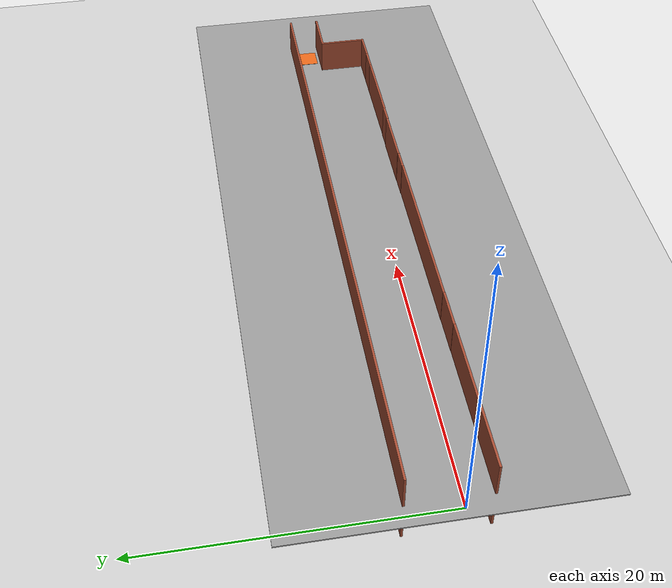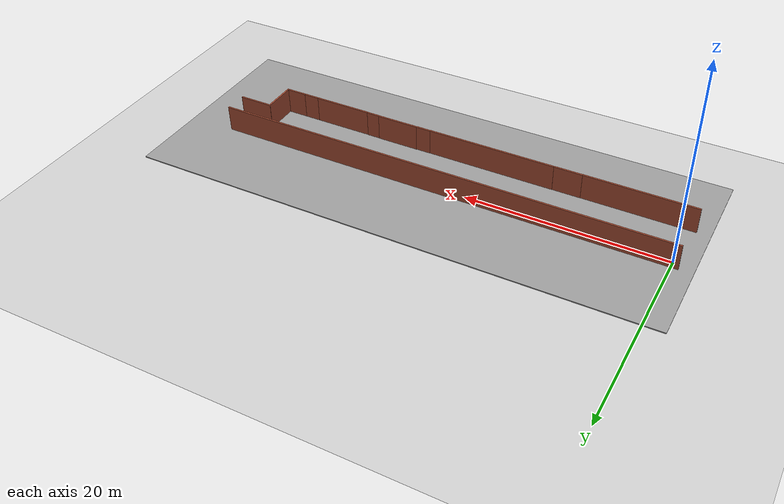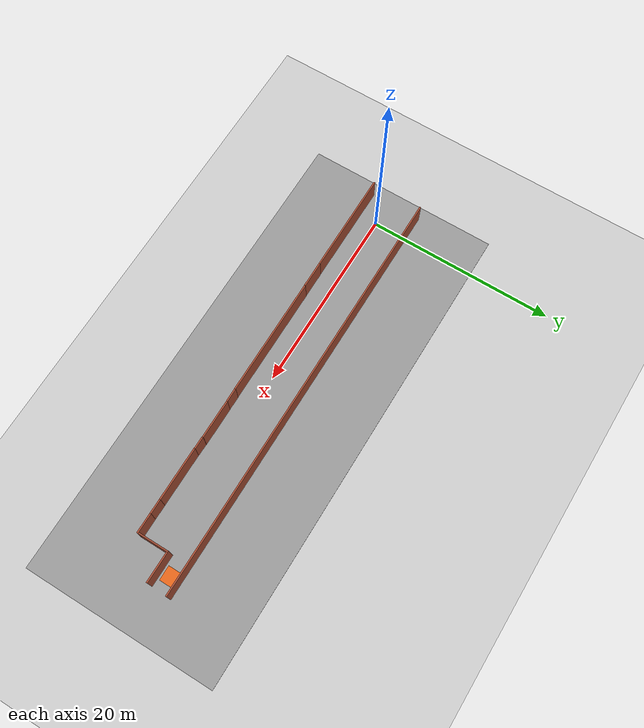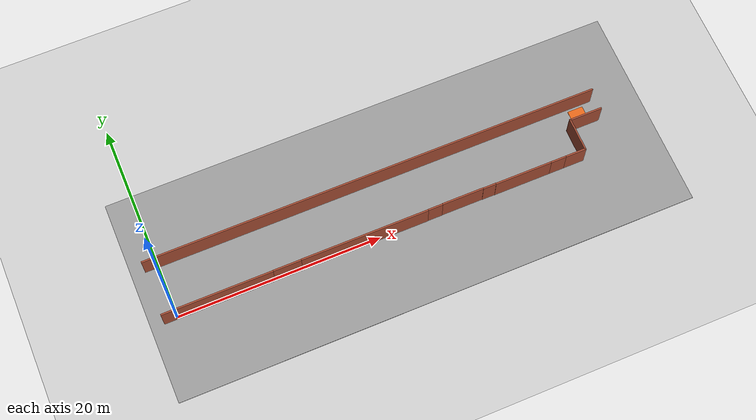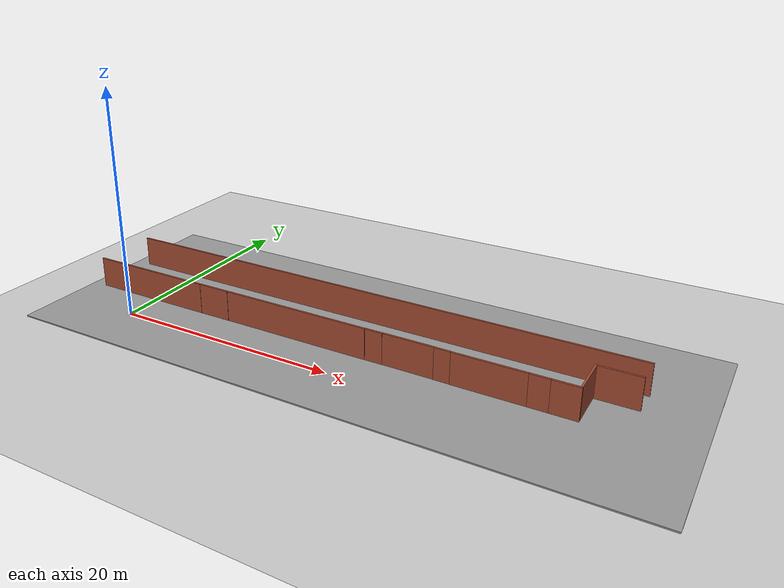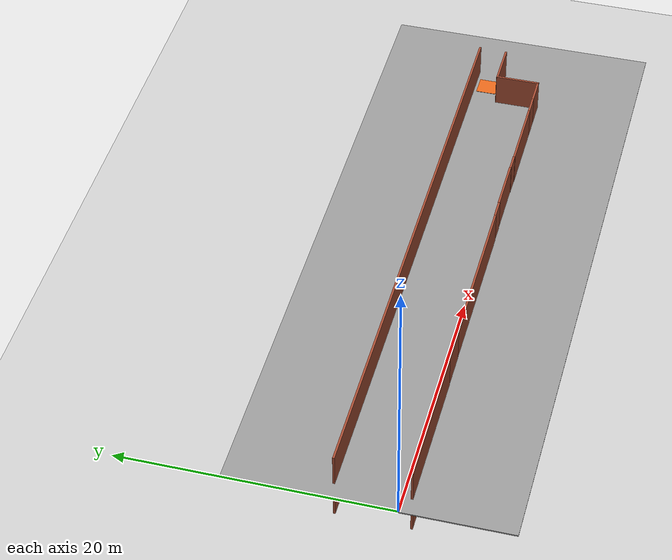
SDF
<sdf version='1.7'>
  <world name='default'>
    <light name='sun' type='directional'>
      <cast_shadows>1</cast_shadows>
      <pose>0 0 10 0 -0 0</pose>
      <diffuse>0.8 0.8 0.8 1</diffuse>
      <specular>0.2 0.2 0.2 1</specular>
      <attenuation>
        <range>1000</range>
        <constant>0.9</constant>
        <linear>0.01</linear>
        <quadratic>0.001</quadratic>
      </attenuation>
      <direction>-0.5 0.1 -0.9</direction>
      <spot>
        <inner_angle>0</inner_angle>
        <outer_angle>0</outer_angle>
        <falloff>0</falloff>
      </spot>
    </light>
    <model name='ground_plane'>
      <static>1</static>
      <link name='link'>
        <collision name='collision'>
          <geometry>
            <plane>
              <normal>0 0 1</normal>
              <size>100 100</size>
            </plane>
          </geometry>
          <surface>
            <friction>
              <ode>
                <mu>100</mu>
                <mu2>50</mu2>
              </ode>
              <torsional>
                <ode/>
              </torsional>
            </friction>
            <contact>
              <ode/>
            </contact>
            <bounce/>
          </surface>
          <max_contacts>10</max_contacts>
        </collision>
        <visual name='visual'>
          <cast_shadows>0</cast_shadows>
          <geometry>
            <plane>
              <normal>0 0 1</normal>
              <size>100 100</size>
            </plane>
          </geometry>
          <material>
            <script>
              <uri>file://media/materials/scripts/gazebo.material</uri>
              <name>Gazebo/Grey</name>
            </script>
          </material>
        </visual>
        <self_collide>0</self_collide>
        <enable_wind>0</enable_wind>
        <kinematic>0</kinematic>
      </link>
    </model>
    <gravity>0 0 -9.8</gravity>
    <magnetic_field>6e-06 2.3e-05 -4.2e-05</magnetic_field>
    <atmosphere type='adiabatic'/>
    <physics type='ode'>
      <max_step_size>0.001</max_step_size>
      <real_time_factor>1</real_time_factor>
      <real_time_update_rate>1000</real_time_update_rate>
    </physics>
    <scene>
      <ambient>0.4 0.4 0.4 1</ambient>
      <background>0.7 0.7 0.7 1</background>
      <shadows>1</shadows>
    </scene>
    <audio>
      <device>default</device>
    </audio>
    <wind/>
    <spherical_coordinates>
      <surface_model>EARTH_WGS84</surface_model>
      <latitude_deg>0</latitude_deg>
      <longitude_deg>0</longitude_deg>
      <elevation>0</elevation>
      <heading_deg>0</heading_deg>
    </spherical_coordinates>

    <include>
      <name>primer_piso_n1</name>
      <uri>model://primer_piso</uri>
      <pose>20.9036 1.43563 0 0 0 0</pose>
    </include>

    <!-- Losa del nivel 2: ground_plane solo existe en z=0, asi que el segundo
         nivel necesita su propio suelo. Cara superior en z=3.0. -->
    <model name='losa_nivel_2'>
      <static>1</static>
      <pose>22.5 1.5 2.95 0 0 0</pose>
      <link name='link'>
        <collision name='collision'>
          <geometry>
            <box>
              <size>50 20 0.1</size>
            </box>
          </geometry>
          <surface>
            <friction>
              <ode>
                <mu>100</mu>
                <mu2>50</mu2>
              </ode>
            </friction>
          </surface>
        </collision>
        <visual name='visual'>
          <geometry>
            <box>
              <size>50 20 0.1</size>
            </box>
          </geometry>
          <material>
            <script>
              <uri>file://media/materials/scripts/gazebo.material</uri>
              <name>Gazebo/Grey</name>
            </script>
          </material>
        </visual>
      </link>
    </model>

    <!-- Nivel 2: misma planta, 3 m mas arriba. Misma pose en X-Y que el nivel 1
         para que las coordenadas del mapa sirvan en los dos niveles. -->
    <include>
      <name>primer_piso_n2</name>
      <uri>model://primer_piso</uri>
      <pose>20.9036 1.43563 3.0 0 0 0</pose>
    </include>

    <gui fullscreen='0'>
      <camera name='user_camera'>
        <pose>20.9 -18.0 14.0 0 0.5 1.5708</pose>
        <view_controller>orbit</view_controller>
        <projection_type>perspective</projection_type>
      </camera>
    </gui>
  </world>
</sdf>

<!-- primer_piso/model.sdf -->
<sdf version='1.7'>
  <model name='primer_piso'>
    <pose>0 0 0 0 0 0</pose>
    <link name='Wall_11'>
      <collision name='Wall_11_Collision'>
        <geometry>
          <box>
            <size>5.5 0.15 2.5</size>
          </box>
        </geometry>
        <pose>0 0 1.25 0 -0 0</pose>
        <max_contacts>10</max_contacts>
        <surface>
          <contact>
            <ode/>
          </contact>
          <bounce/>
          <friction>
            <torsional>
              <ode/>
            </torsional>
            <ode/>
          </friction>
        </surface>
      </collision>
      <visual name='Wall_11_Visual'>
        <pose>0 0 1.25 0 -0 0</pose>
        <geometry>
          <box>
            <size>5.5 0.15 2.5</size>
          </box>
        </geometry>
        <material>
          <script>
            <uri>file://media/materials/scripts/gazebo.material</uri>
            <name>Gazebo/Bricks</name>
          </script>
          <ambient>1 1 1 1</ambient>
        </material>
        <meta>
          <layer>0</layer>
        </meta>
      </visual>
      <pose>12.6839 -2.61062 0 0 -0 0</pose>
      <self_collide>0</self_collide>
      <enable_wind>0</enable_wind>
      <kinematic>0</kinematic>
    </link>
    <link name='Wall_13'>
      <collision name='Wall_13_Collision'>
        <geometry>
          <box>
            <size>2.03065 0.15 2.5</size>
          </box>
        </geometry>
        <pose>0 0 1.25 0 -0 0</pose>
        <max_contacts>10</max_contacts>
        <surface>
          <contact>
            <ode/>
          </contact>
          <bounce/>
          <friction>
            <torsional>
              <ode/>
            </torsional>
            <ode/>
          </friction>
        </surface>
      </collision>
      <visual name='Wall_13_Visual'>
        <pose>0 0 1.25 0 -0 0</pose>
        <geometry>
          <box>
            <size>2.03065 0.15 2.5</size>
          </box>
        </geometry>
        <material>
          <script>
            <uri>file://media/materials/scripts/gazebo.material</uri>
            <name>Gazebo/Bricks</name>
          </script>
          <ambient>1 1 1 1</ambient>
        </material>
        <meta>
          <layer>0</layer>
        </meta>
      </visual>
      <pose>17.932 -2.61062 0 0 -0 0</pose>
      <self_collide>0</self_collide>
      <enable_wind>0</enable_wind>
      <kinematic>0</kinematic>
    </link>
    <link name='Wall_15'>
      <collision name='Wall_15_Collision'>
        <geometry>
          <box>
            <size>3.29046 0.15 2.5</size>
          </box>
        </geometry>
        <pose>0 0 1.25 0 -0 0</pose>
        <max_contacts>10</max_contacts>
        <surface>
          <contact>
            <ode/>
          </contact>
          <bounce/>
          <friction>
            <torsional>
              <ode/>
            </torsional>
            <ode/>
          </friction>
        </surface>
      </collision>
      <visual name='Wall_15_Visual'>
        <pose>0 0 1.25 0 -0 0</pose>
        <geometry>
          <box>
            <size>3.29046 0.15 2.5</size>
          </box>
        </geometry>
        <material>
          <script>
            <uri>file://media/materials/scripts/gazebo.material</uri>
            <name>Gazebo/Bricks</name>
          </script>
          <ambient>1 1 1 1</ambient>
        </material>
        <meta>
          <layer>0</layer>
        </meta>
      </visual>
      <pose>18.8723 -1.0251 0 0 -0 1.5708</pose>
      <self_collide>0</self_collide>
      <enable_wind>0</enable_wind>
      <kinematic>0</kinematic>
    </link>
    <link name='Wall_17'>
      <collision name='Wall_17_Collision'>
        <geometry>
          <box>
            <size>44.25 0.15 2.5</size>
          </box>
        </geometry>
        <pose>0 0 1.25 0 -0 0</pose>
        <max_contacts>10</max_contacts>
        <surface>
          <contact>
            <ode/>
          </contact>
          <bounce/>
          <friction>
            <torsional>
              <ode/>
            </torsional>
            <ode/>
          </friction>
        </surface>
      </collision>
      <visual name='Wall_17_Visual'>
        <pose>0 0 1.25 0 -0 0</pose>
        <geometry>
          <box>
            <size>44.25 0.15 2.5</size>
          </box>
        </geometry>
        <material>
          <script>
            <uri>file://media/materials/scripts/gazebo.material</uri>
            <name>Gazebo/Bricks</name>
          </script>
          <ambient>1 1 1 1</ambient>
        </material>
        <meta>
          <layer>0</layer>
        </meta>
      </visual>
      <pose>0.019978 2.63229 0 0 -0 3.14159</pose>
      <self_collide>0</self_collide>
      <enable_wind>0</enable_wind>
      <kinematic>0</kinematic>
    </link>
    <link name='Wall_19'>
      <collision name='Wall_19_Collision'>
        <geometry>
          <box>
            <size>3.25 0.15 2.5</size>
          </box>
        </geometry>
        <pose>0 0 1.25 0 -0 0</pose>
        <max_contacts>10</max_contacts>
        <surface>
          <contact>
            <ode/>
          </contact>
          <bounce/>
          <friction>
            <torsional>
              <ode/>
            </torsional>
            <ode/>
          </friction>
        </surface>
      </collision>
      <visual name='Wall_19_Visual'>
        <pose>0 0 1.25 0 -0 0</pose>
        <geometry>
          <box>
            <size>3.25 0.15 2.5</size>
          </box>
        </geometry>
        <material>
          <script>
            <uri>file://media/materials/scripts/gazebo.material</uri>
            <name>Gazebo/Bricks</name>
          </script>
          <ambient>1 1 1 1</ambient>
        </material>
        <meta>
          <layer>0</layer>
        </meta>
      </visual>
      <pose>20.4223 0.565357 0 0 -0 0</pose>
      <self_collide>0</self_collide>
      <enable_wind>0</enable_wind>
      <kinematic>0</kinematic>
    </link>
    <link name='Wall_5'>
      <collision name='Wall_5_Collision'>
        <geometry>
          <box>
            <size>10.5 0.15 2.5</size>
          </box>
        </geometry>
        <pose>0 0 1.25 0 -0 0</pose>
        <max_contacts>10</max_contacts>
        <surface>
          <contact>
            <ode/>
          </contact>
          <bounce/>
          <friction>
            <torsional>
              <ode/>
            </torsional>
            <ode/>
          </friction>
        </surface>
      </collision>
      <visual name='Wall_5_Visual'>
        <pose>0 0 1.25 0 -0 0</pose>
        <geometry>
          <box>
            <size>10.5 0.15 2.5</size>
          </box>
        </geometry>
        <material>
          <script>
            <uri>file://media/materials/scripts/gazebo.material</uri>
            <name>Gazebo/Bricks</name>
          </script>
          <ambient>1 1 1 1</ambient>
        </material>
        <meta>
          <layer>0</layer>
        </meta>
      </visual>
      <pose>-16.895 -2.63229 0 0 -0 3.14159</pose>
      <self_collide>0</self_collide>
      <enable_wind>0</enable_wind>
      <kinematic>0</kinematic>
    </link>
    <link name='Wall_7'>
      <collision name='Wall_7_Collision'>
        <geometry>
          <box>
            <size>12.25 0.15 2.5</size>
          </box>
        </geometry>
        <pose>0 0 1.25 0 -0 0</pose>
        <max_contacts>10</max_contacts>
        <surface>
          <contact>
            <ode/>
          </contact>
          <bounce/>
          <friction>
            <torsional>
              <ode/>
            </torsional>
            <ode/>
          </friction>
        </surface>
      </collision>
      <visual name='Wall_7_Visual'>
        <pose>0 0 1.25 0 -0 0</pose>
        <geometry>
          <box>
            <size>12.25 0.15 2.5</size>
          </box>
        </geometry>
        <material>
          <script>
            <uri>file://media/materials/scripts/gazebo.material</uri>
            <name>Gazebo/Bricks</name>
          </script>
          <ambient>1 1 1 1</ambient>
        </material>
        <meta>
          <layer>0</layer>
        </meta>
      </visual>
      <pose>-2.84667 -2.60442 0 0 -0 3.14159</pose>
      <self_collide>0</self_collide>
      <enable_wind>0</enable_wind>
      <kinematic>0</kinematic>
    </link>
    <link name='Wall_9'>
      <collision name='Wall_9_Collision'>
        <geometry>
          <box>
            <size>4 0.15 2.5</size>
          </box>
        </geometry>
        <pose>0 0 1.25 0 -0 0</pose>
        <max_contacts>10</max_contacts>
        <surface>
          <contact>
            <ode/>
          </contact>
          <bounce/>
          <friction>
            <torsional>
              <ode/>
            </torsional>
            <ode/>
          </friction>
        </surface>
      </collision>
      <visual name='Wall_9_Visual'>
        <pose>0 0 1.25 0 -0 0</pose>
        <geometry>
          <box>
            <size>4 0.15 2.5</size>
          </box>
        </geometry>
        <material>
          <script>
            <uri>file://media/materials/scripts/gazebo.material</uri>
            <name>Gazebo/Bricks</name>
          </script>
          <ambient>1 1 1 1</ambient>
        </material>
        <meta>
          <layer>0</layer>
        </meta>
      </visual>
      <pose>6.68444 -2.56762 0 0 -0 0</pose>
      <self_collide>0</self_collide>
      <enable_wind>0</enable_wind>
      <kinematic>0</kinematic>
    </link>
    <link name='Wall_Gap1'>
      <collision name='Wall_Gap1_Collision'>
        <geometry>
          <box>
            <size>2.6733 0.15 2.5</size>
          </box>
        </geometry>
        <pose>0 0 1.25 0 -0 0</pose>
        <max_contacts>10</max_contacts>
        <surface>
          <contact><ode/></contact>
          <bounce/>
          <friction><torsional><ode/></torsional><ode/></friction>
        </surface>
      </collision>
      <visual name='Wall_Gap1_Visual'>
        <pose>0 0 1.25 0 -0 0</pose>
        <geometry>
          <box>
            <size>2.6733 0.15 2.5</size>
          </box>
        </geometry>
        <material>
          <script>
            <uri>file://media/materials/scripts/gazebo.material</uri>
            <name>Gazebo/Bricks</name>
          </script>
          <ambient>1 1 1 1</ambient>
        </material>
        <meta><layer>0</layer></meta>
      </visual>
      <pose>-10.30833 -2.61836 0 0 -0 0</pose>
      <self_collide>0</self_collide>
      <enable_wind>0</enable_wind>
      <kinematic>0</kinematic>
    </link>
    <link name='Wall_Gap2'>
      <collision name='Wall_Gap2_Collision'>
        <geometry>
          <box>
            <size>1.4061 0.15 2.5</size>
          </box>
        </geometry>
        <pose>0 0 1.25 0 -0 0</pose>
        <max_contacts>10</max_contacts>
        <surface>
          <contact><ode/></contact>
          <bounce/>
          <friction><torsional><ode/></torsional><ode/></friction>
        </surface>
      </collision>
      <visual name='Wall_Gap2_Visual'>
        <pose>0 0 1.25 0 -0 0</pose>
        <geometry>
          <box>
            <size>1.4061 0.15 2.5</size>
          </box>
        </geometry>
        <material>
          <script>
            <uri>file://media/materials/scripts/gazebo.material</uri>
            <name>Gazebo/Bricks</name>
          </script>
          <ambient>1 1 1 1</ambient>
        </material>
        <meta><layer>0</layer></meta>
      </visual>
      <pose>3.98139 -2.58602 0 0 -0 0</pose>
      <self_collide>0</self_collide>
      <enable_wind>0</enable_wind>
      <kinematic>0</kinematic>
    </link>
    <link name='Wall_Gap3'>
      <collision name='Wall_Gap3_Collision'>
        <geometry>
          <box>
            <size>1.2495 0.15 2.5</size>
          </box>
        </geometry>
        <pose>0 0 1.25 0 -0 0</pose>
        <max_contacts>10</max_contacts>
        <surface>
          <contact><ode/></contact>
          <bounce/>
          <friction><torsional><ode/></torsional><ode/></friction>
        </surface>
      </collision>
      <visual name='Wall_Gap3_Visual'>
        <pose>0 0 1.25 0 -0 0</pose>
        <geometry>
          <box>
            <size>1.2495 0.15 2.5</size>
          </box>
        </geometry>
        <material>
          <script>
            <uri>file://media/materials/scripts/gazebo.material</uri>
            <name>Gazebo/Bricks</name>
          </script>
          <ambient>1 1 1 1</ambient>
        </material>
        <meta><layer>0</layer></meta>
      </visual>
      <pose>9.30917 -2.58912 0 0 -0 0</pose>
      <self_collide>0</self_collide>
      <enable_wind>0</enable_wind>
      <kinematic>0</kinematic>
    </link>
    <link name='Wall_Gap4'>
      <collision name='Wall_Gap4_Collision'>
        <geometry>
          <box>
            <size>1.4828 0.15 2.5</size>
          </box>
        </geometry>
        <pose>0 0 1.25 0 -0 0</pose>
        <max_contacts>10</max_contacts>
        <surface>
          <contact><ode/></contact>
          <bounce/>
          <friction><torsional><ode/></torsional><ode/></friction>
        </surface>
      </collision>
      <visual name='Wall_Gap4_Visual'>
        <pose>0 0 1.25 0 -0 0</pose>
        <geometry>
          <box>
            <size>1.4828 0.15 2.5</size>
          </box>
        </geometry>
        <material>
          <script>
            <uri>file://media/materials/scripts/gazebo.material</uri>
            <name>Gazebo/Bricks</name>
          </script>
          <ambient>1 1 1 1</ambient>
        </material>
        <meta><layer>0</layer></meta>
      </visual>
      <pose>16.17529 -2.61062 0 0 -0 0</pose>
      <self_collide>0</self_collide>
      <enable_wind>0</enable_wind>
      <kinematic>0</kinematic>
    </link>
    <link name='zona_transicion'>
      <pose>20.4964 1.59437 0.01 0 0 0</pose>
      <visual name='zona_transicion_visual'>
        <geometry>
          <box>
            <size>1.5 1.5 0.02</size>
          </box>
        </geometry>
        <material>
          <ambient>0.9 0.4 0.1 1</ambient>
          <diffuse>0.9 0.4 0.1 1</diffuse>
        </material>
      </visual>
    </link>
    <static>1</static>
  </model>
</sdf>
